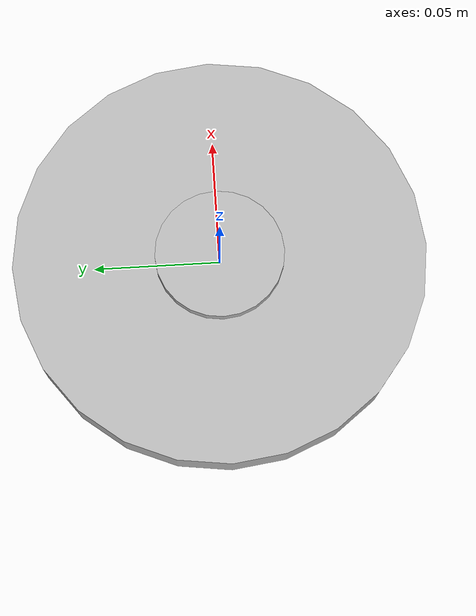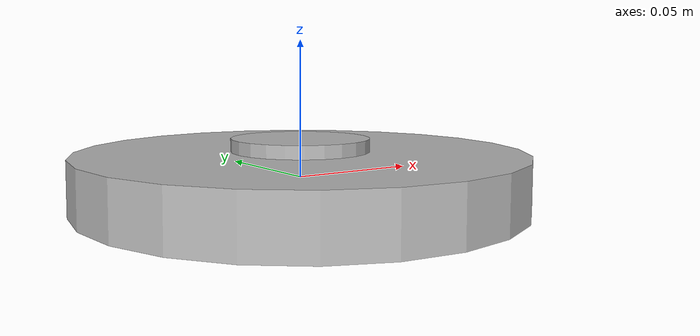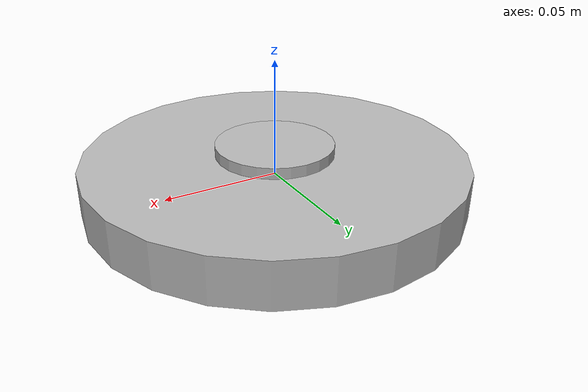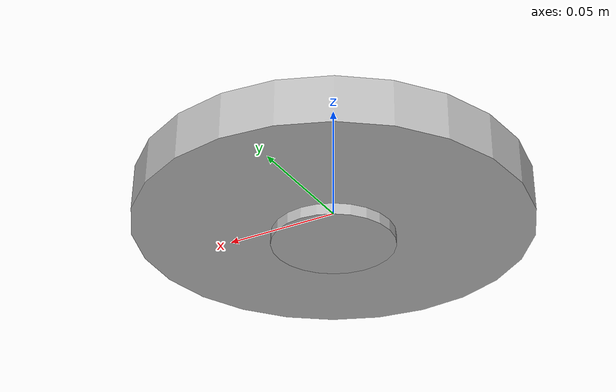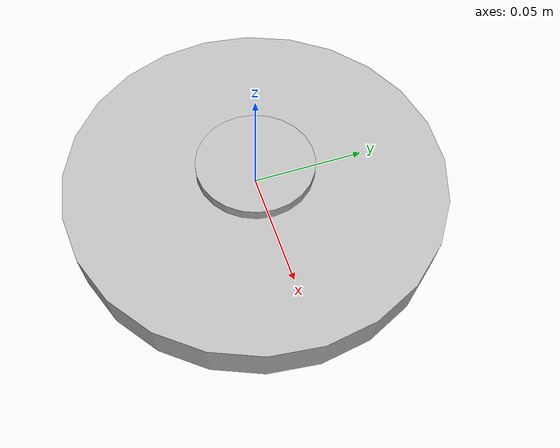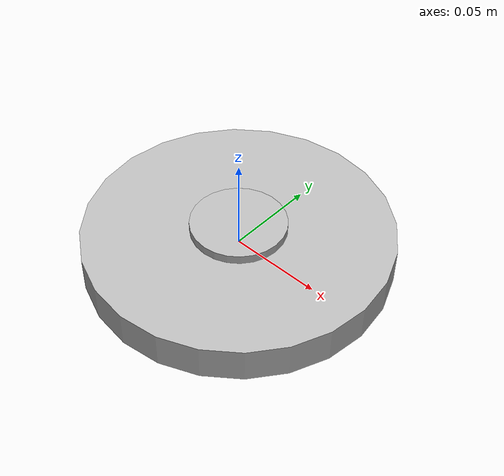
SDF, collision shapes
<sdf version='1.6'>
  <model name='romi'>
    <link name='chassis'>
      <pose frame=''>0 0 0 0 -0 0</pose>
      <inertial>
        <pose frame=''>0 0 0 0 -0 0</pose>
        <mass>0.16</mass>
        <inertia>
          <ixx>0.1</ixx>
          <ixy>0</ixy>
          <ixz>0</ixz>
          <iyy>0.1</iyy>
          <iyz>0</iyz>
          <izz>0.1</izz>
        </inertia>
      </inertial>
      <collision name='chassis_collision_collision'>
        <pose frame=''>0 0 0 0 -0 0</pose>
        <geometry>
          <cylinder>
            <length>0.0195</length>
            <radius>0.0815</radius>
          </cylinder>
        </geometry>
      </collision>
      <collision name='chassis_fixed_joint_lump__caster_front_collision_collision_1'>
        <pose frame=''>0 0 0 0 -0 0</pose>
        <geometry>
          <cylinder>
            <length>0.029</length>
            <radius>0.0254</radius>
          </cylinder>
        </geometry>
      </collision>
      <collision name='chassis_fixed_joint_lump__caster_ball_front_collision_collision_2'>
        <pose frame=''>0 0 0 0 -0 0</pose>
        <geometry>
          <sphere>
            <radius>0.0127</radius>
          </sphere>
        </geometry>
      </collision>
      <collision name='chassis_fixed_joint_lump__caster_back_collision_collision_3'>
        <pose frame=''>0 0 0 0 -0 0</pose>
        <geometry>
          <cylinder>
            <length>0.029</length>
            <radius>0.0254</radius>
          </cylinder>
        </geometry>
      </collision>
      <collision name='chassis_fixed_joint_lump__caster_back_collision_collision_4'>
        <pose frame=''>0 0 0 0 -0 0</pose>
        <geometry>
          <cylinder>
            <length>0.029</length>
            <radius>0.0254</radius>
          </cylinder>
        </geometry>
      </collision>
      <visual name='chassis_visual_visual'>
        <pose frame=''>0 0 0 0 -0 0</pose>
        <geometry>
          <mesh>
            <scale>1 1 1</scale>
            <uri>model://romi/meshes/romi_base.dae</uri>
          </mesh>
        </geometry>
      </visual>
    </link>
    <link name='wheel_l'>
      <pose frame=''>0 0 0 0 -0 0</pose>
      <inertial>
        <pose frame=''>0 0 0 0 -0 0</pose>
        <mass>0.141748</mass>
        <inertia>
          <ixx>4.41663e-05</ixx>
          <ixy>0</ixy>
          <ixz>0</ixz>
          <iyy>4.41663e-05</iyy>
          <iyz>0</iyz>
          <izz>8.68207e-05</izz>
        </inertia>
      </inertial>
      <collision name='wheel_l_collision_collision'>
        <pose frame=''>0 0 0 0 -0 0</pose>
        <geometry>
          <cylinder>
            <length>0.008</length>
            <radius>0.035</radius>
          </cylinder>
        </geometry>
        <surface>
          <contact>
            <ode/>
          </contact>
          <friction>
            <ode>
              <mu>0</mu>
              <mu2>0</mu2>
            </ode>
          </friction>
        </surface>
      </collision>
      <visual name='wheel_l_visual_visual'>
        <pose frame=''>0 0 0 0 -0 0</pose>
        <geometry>
          <mesh>
            <scale>1 1 1</scale>
            <uri>model://romi/meshes/romi_wheel_left.dae</uri>
          </mesh>
        </geometry>
        <material>
          <script>
            <uri>__default__</uri>
            <name>__default__</name>
          </script>
        </material>
      </visual>
      <gravity>1</gravity>
      <velocity_decay/>
    </link>
    <joint name='wheel_l_joint' type='revolute'>
      <child>wheel_l</child>
      <parent>chassis</parent>
      <axis>
        <xyz>0 0 1</xyz>
        <limit>
          <lower>-1e+16</lower>
          <upper>1e+16</upper>
        </limit>
        <dynamics>
          <spring_reference>0</spring_reference>
          <spring_stiffness>0</spring_stiffness>
        </dynamics>
        <use_parent_model_frame>1</use_parent_model_frame>
      </axis>
    </joint>
    <link name='wheel_r'>
      <pose frame=''>0 0 0 0 -0 0</pose>
      <inertial>
        <pose frame=''>0 0 0 0 -0 0</pose>
        <mass>0.141748</mass>
        <inertia>
          <ixx>4.41663e-05</ixx>
          <ixy>0</ixy>
          <ixz>0</ixz>
          <iyy>4.41663e-05</iyy>
          <iyz>0</iyz>
          <izz>8.68207e-05</izz>
        </inertia>
      </inertial>
      <collision name='wheel_r_collision_collision'>
        <pose frame=''>0 0 0 0 -0 0</pose>
        <geometry>
          <cylinder>
            <length>0.008</length>
            <radius>0.035</radius>
          </cylinder>
        </geometry>
        <surface>
          <contact>
            <ode/>
          </contact>
          <friction>
            <ode>
              <mu>0</mu>
              <mu2>0</mu2>
            </ode>
          </friction>
        </surface>
      </collision>
      <visual name='wheel_r_visual_visual'>
        <pose frame=''>0 0 0 0 -0 0</pose>
        <geometry>
          <mesh>
            <scale>1 1 1</scale>
            <uri>model://romi/meshes/romi_wheel_right.dae</uri>
          </mesh>
        </geometry>
        <material>
          <script>
            <uri>__default__</uri>
            <name>__default__</name>
          </script>
        </material>
      </visual>
      <gravity>1</gravity>
      <velocity_decay/>
    </link>
    <joint name='wheel_r_joint' type='revolute'>
      <child>wheel_r</child>
      <parent>chassis</parent>
      <axis>
        <xyz>0 0 1</xyz>
        <limit>
          <lower>-1e+16</lower>
          <upper>1e+16</upper>
        </limit>
        <dynamics>
          <spring_reference>0</spring_reference>
          <spring_stiffness>0</spring_stiffness>
        </dynamics>
        <use_parent_model_frame>1</use_parent_model_frame>
      </axis>
    </joint>
    <static>0</static>
    <plugin name='gazebo_ros_control' filename='libgazebo_ros_control.so'>
      <robotNamespace>/</robotNamespace>
    </plugin>
  </model>
</sdf>
